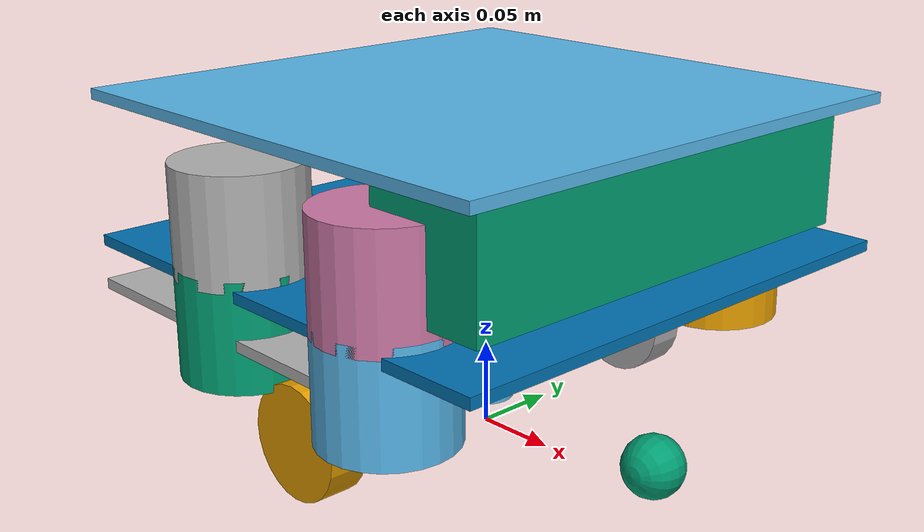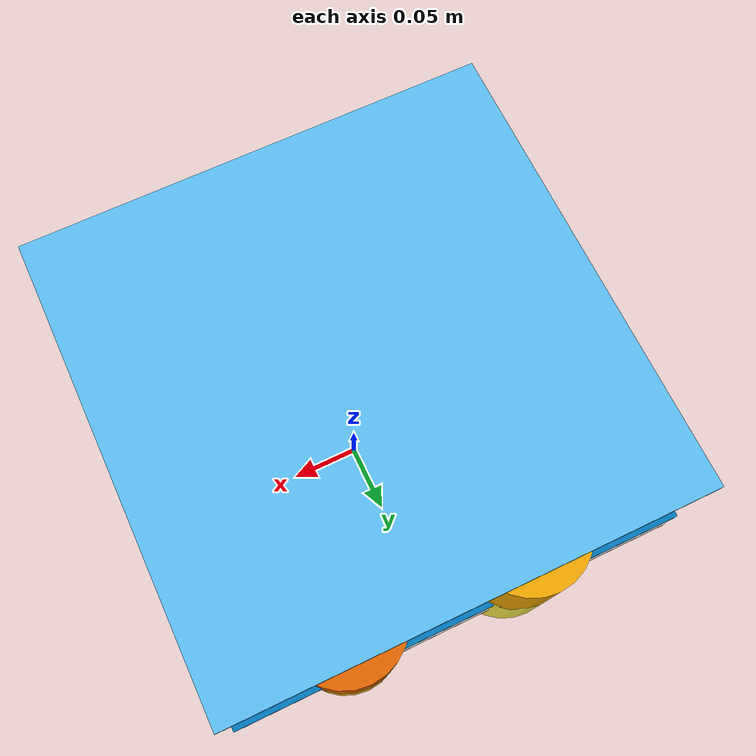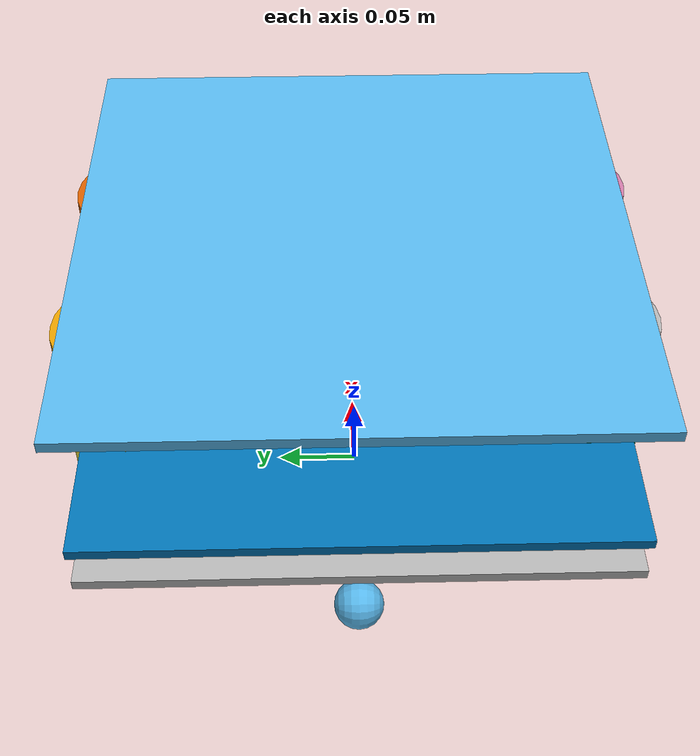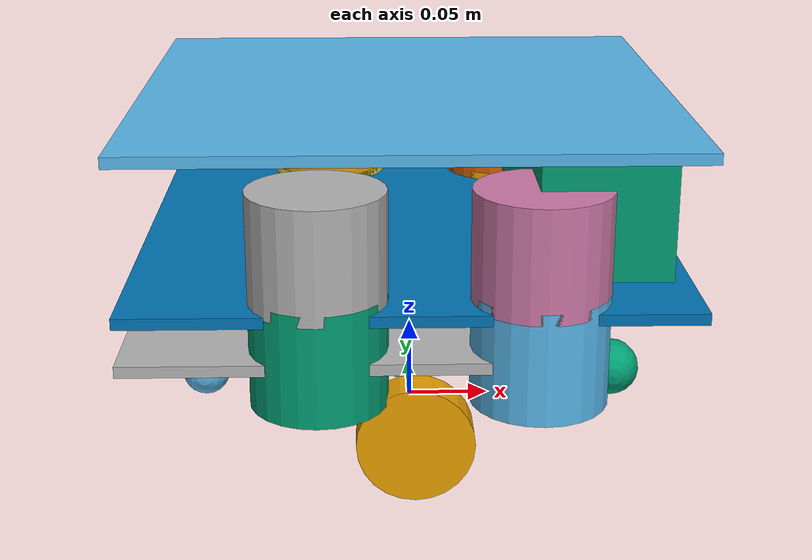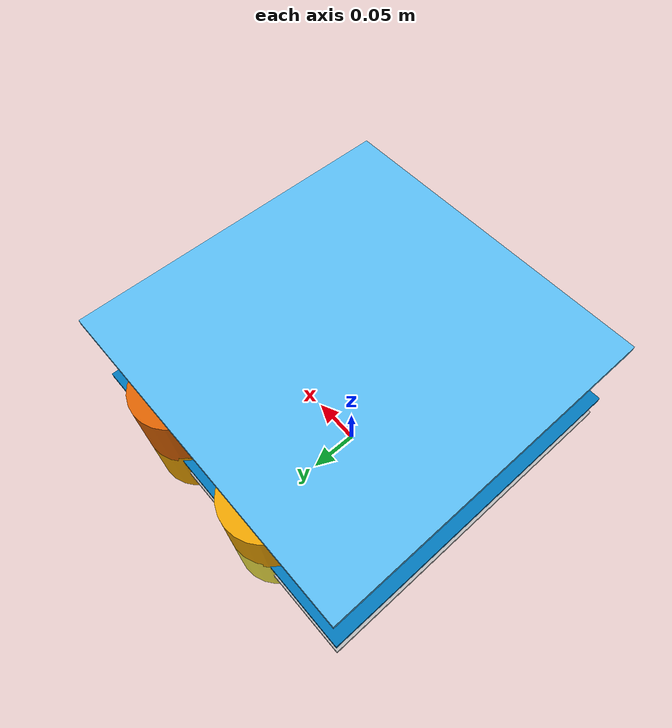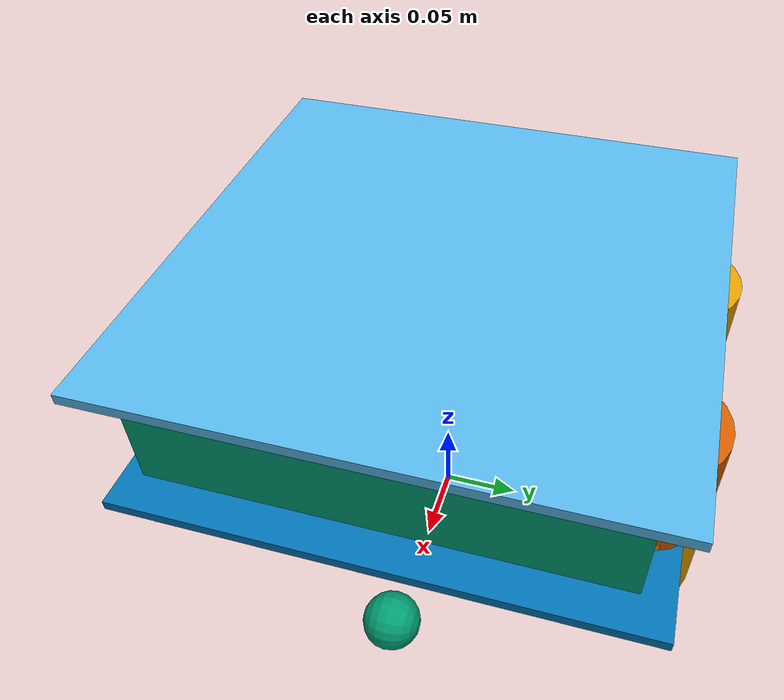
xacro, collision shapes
<?xml version="1.0"?>

<robot name="turtlebot"
    xmlns:sensor="http://playerstage.sourceforge.net/gazebo/xmlschema/#sensor"
    xmlns:controller="http://playerstage.sourceforge.net/gazebo/xmlschema/#controller"
    xmlns:interface="http://playerstage.sourceforge.net/gazebo/xmlschema/#interface">

    <!-- Included URDF Files -->
    <include filename="$(find tortoise_description)/urdf/turtlebot.xacro" />

    <turtlebot />
</robot>

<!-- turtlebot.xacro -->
<robot>
  <include filename="$(find tortoise_description)/urdf/turtlebot_hardware.xacro" />
  <include filename="$(find tortoise_description)/urdf/gazebo.urdf.xacro"/>
  <include filename="$(find tortoise_description)/urdf/turtlebot_calibration.xacro" />

  <material name="Green">
    <color rgba="0.0 0.8 0.0 1.0"/>
  </material>

  <property name="M_PI" value="3.14159"/>
  <property name="SCALE" value="0.0254"/>
  <property name="base_x" value="0.33" />
  <property name="base_y" value="0.33" />

  <macro name="turtlebot">
  <!-- base_footprint is a fictitious link(frame) that is on the ground right below base_link origin, navigation stack depends on this frame -->

  <link name="base_footprint">
    <inertial>
      <mass value="0.0001" />
      <origin xyz="0 0 0" />
      <inertia ixx="0.0001" ixy="0.0" ixz="0.0"
              iyy="0.0001" iyz="0.0"
              izz="0.0001" />
    </inertial>

    <visual>
      <origin xyz="0 0 0" rpy="0 0 0" />
      <geometry>
        <box size="0.001 0.001 0.001" />
      </geometry>
      <material name="Green" />
    </visual>

    <collision>
      <origin xyz="0 0 0.017" rpy="0 0 0" />
      <geometry>
       <box size="0.001 0.001 0.001" />
      </geometry>
    </collision>
  </link>

  <link name="base_link">
    <inertial>
      <mass value="2" />
      <origin xyz="0 0 0.0" />
      <inertia ixx="0.01" ixy="0.0" ixz="0.0"
        iyy="0.01" iyz="0.0" izz="0.5" />
    </inertial>

    <visual>
      <origin xyz=" 0 0 0.0308" rpy="0 0 0" />
      <geometry>
        <mesh filename="package://tortoise_description/meshes/create_body.dae"/>
      </geometry>
    </visual>

    <collision>
      <origin xyz="0.0 0.0 0.0308" rpy="0 0 0" />
      <geometry>
        <cylinder length="0.0611632" radius="0.016495"/>
      </geometry>
    </collision>
  </link>

  <link name="wall_sensor_link">
    <inertial>
      <mass value="0.01" />
      <origin xyz="0 0 0"/>
      <inertia ixx="0.001" ixy="0.0" ixz="0.0"
        iyy="0.001" iyz="0.0" izz="0.001" />
    </inertial>
  </link>

  <link name="left_cliff_sensor_link">
    <inertial>
      <mass value="0.01" />
      <origin xyz="0 0 0"/>
      <inertia ixx="0.001" ixy="0.0" ixz="0.0"
        iyy="0.001" iyz="0.0" izz="0.001" />
    </inertial>
  </link>

  <link name="right_cliff_sensor_link">
    <inertial>
      <mass value="0.01" />
      <origin xyz="0 0 0"/>
      <inertia ixx="0.001" ixy="0.0" ixz="0.0"
        iyy="0.001" iyz="0.0" izz="0.001" />
    </inertial>
  </link>

  <link name="leftfront_cliff_sensor_link">
    <inertial>
      <mass value="0.01" />
      <origin xyz="0 0 0"/>
      <inertia ixx="1.0" ixy="0.0" ixz="0.0"
        iyy="0.01" iyz="0.0" izz="0.01" />
    </inertial>
  </link>

  <link name="rightfront_cliff_sensor_link">
    <inertial>
      <mass value="0.01" />
      <origin xyz="0 0 0"/>
      <inertia ixx="0.001" ixy="0.0" ixz="0.0"
        iyy="0.001" iyz="0.0" izz="0.001" />
    </inertial>
  </link>

  <joint name="base_footprint_joint" type="fixed">
    <origin xyz="0 0 0.017" rpy="0 0 0" />
    <parent link="base_footprint"/>
    <child link="base_link" />
  </joint>

  <joint name="base_wall_sensor_joint" type="fixed">
    <origin xyz="0.09 -0.120 0.042" rpy="0 0 -1.0" />
    <parent link="base_link"/>
    <child link="wall_sensor_link" />
  </joint>

  <joint name="base_left_cliff_sensor_joint" type="fixed">
    <origin xyz="0.07 0.14 0.01" rpy="0 1.57079 0" />
    <parent link="base_link"/>
    <child link="left_cliff_sensor_link" />
  </joint>

  <joint name="base_right_cliff_sensor_joint" type="fixed">
    <origin xyz="0.07 -0.14 0.01" rpy="0 1.57079 0" />
    <parent link="base_link"/>
    <child link="right_cliff_sensor_link" />
  </joint>

  <joint name="base_leftfront_cliff_sensor_joint" type="fixed">
    <origin xyz="0.15 0.04 0.01" rpy="0 1.57079 0" />
    <parent link="base_link"/>
    <child link="leftfront_cliff_sensor_link" />
  </joint>

  <joint name="base_rightfront_cliff_sensor_joint" type="fixed">
    <origin xyz="0.15 -0.04 0.01" rpy="0 1.57079 0" />
    <parent link="base_link"/>
    <child link="rightfront_cliff_sensor_link" />
  </joint>

  <link name="left_wheel_link">
    <inertial>
      <origin xyz="0 0 0"/>
      <mass value="0.01" />
      <inertia ixx="0.001" ixy="0.0" ixz="0.0"
        iyy="0.001" iyz="0.0" izz="0.001" />
    </inertial>

    <visual>
      <origin xyz="0 0 0" rpy="0 1.5707 1.5707" />
      <geometry>
        <cylinder radius="0.033" length = "0.023"/>
      </geometry>
    </visual>

    <collision>
      <origin xyz="0 0 0" rpy="0 1.5707 1.5707" />
      <geometry>
        <cylinder radius="0.033" length = "0.023"/>
      </geometry>
    </collision>
  </link>

  <joint name="left_wheel_joint" type="continuous">
    <origin xyz="0 0.13 0.015" rpy="0 0 0"/>
    <parent link="base_link"/>
    <child link="left_wheel_link"/>
    <axis xyz="0 1 0"/>
  </joint>

  <link name="right_wheel_link">
    <inertial>
      <origin xyz="0 0 0"/>
      <mass value="0.01" />
      <inertia ixx="0.001" ixy="0.0" ixz="0.0"
        iyy="0.001" iyz="0.0" izz="0.001" />
    </inertial>

    <visual>
      <origin xyz="0 0 0" rpy="0 1.5707 1.5707" />
      <geometry>
        <cylinder radius="0.033" length = "0.023"/>
      </geometry>
    </visual>

    <collision>
      <origin xyz="0 0 0" rpy="0 1.5707 1.5707" />
      <geometry>
        <cylinder radius="0.033" length = "0.023"/>
      </geometry>
    </collision>
  </link>

  <joint name="right_wheel_joint" type="continuous">
    <origin xyz="0 -0.13 0.015" rpy="0 0 0"/>
    <parent link="base_link"/>
    <child link="right_wheel_link"/>
    <axis xyz="0 1 0"/>
  </joint>

  <link name="rear_wheel_link">
    <inertial>
      <origin xyz="0 0 0"/>
      <mass value="0.001" />
      <inertia ixx="0.0001" ixy="0.0" ixz="0.0"
        iyy="0.0001" iyz="0.0" izz="0.0001" />
    </inertial>

    <visual>
      <origin xyz="0 0 0" rpy="0 1.5707 1.5707"/>
      <geometry>
        <sphere radius="0.015" />
      </geometry>
    </visual>

    <collision>
      <origin xyz="0 0 0" rpy="0 1.5707 1.5707" />
      <geometry>
        <sphere radius="0.015" />
      </geometry>
    </collision>
  </link>
  <!-- fixed because there's no transmission -->
  <joint name="rear_castor_joint" type="fixed">
    <origin xyz="-0.13 0 0.0" rpy="0 0 0"/>
    <parent link="base_link"/>
    <child link="rear_wheel_link"/>
    <axis xyz="0 1 0"/>
  </joint>

  <link name="front_wheel_link">
    <inertial>
      <origin xyz="0 0 0" />
      <mass value="0.01" />
      <inertia ixx="0.001" ixy="0.0" ixz="0.0"
        iyy="0.001" iyz="0.0" izz="0.001" />
    </inertial>

    <visual>
      <origin xyz="0 0 0" rpy="0 1.5707 1.5707"/>
      <geometry>
        <sphere radius="0.018" />
      </geometry>
    </visual>

    <collision>
      <origin xyz="0 0 0" rpy="0 1.5707 1.5707" />
      <geometry>
        <sphere radius="0.018" />
      </geometry>
    </collision>
  </link>

  <!-- fixed because there's no transmission -->
  <joint name="front_castor_joint" type="fixed">
    <origin xyz="0.13 0 0.0" rpy="0 0 0"/>
    <parent link="base_link"/>
    <child link="front_wheel_link"/>
    <axis xyz="0 1 0"/>
  </joint>

  <turtlebot_spacer parent="base_link" number="0" x_loc="-0.00254" y_loc="0.1114679" z_loc="0.062992"/>
  <turtlebot_spacer parent="base_link" number="1" x_loc="-0.00254" y_loc="-0.1114679" z_loc="0.062992"/>
  <turtlebot_spacer parent="base_link" number="2" x_loc="-0.07239" y_loc="-0.1114679" z_loc="0.062992"/>
  <turtlebot_spacer parent="base_link" number="3" x_loc="-0.07239" y_loc="0.1114679" z_loc="0.062992"/>

  <joint name="plate_0_joint" type="fixed">
    <origin xyz="-0.04334 0  0.06775704" rpy="0 0 0" />
    <parent link="base_link"/>
    <child link="plate_0_link" />
  </joint>

  <link name="plate_0_link">
    <inertial>
      <mass value="0.01" />
      <origin xyz="0 0 0" />
      <inertia ixx="0.01" ixy="0.0" ixz="0.0"
        iyy="0.01" iyz="0.0"
        izz="0.01" />
    </inertial>

    <visual>
      <origin xyz=" 0 0 0 " rpy="0 0 0" />
      <geometry>
        <mesh filename="package://tortoise_description/meshes/plate_0_logo.dae"/>
      </geometry>
    </visual>

    <collision>
      <origin xyz="0.0 0.0 0.0" rpy="0 0 0" />
      <geometry>
        <box size="0.233502 0.314845 0.006401"/>
      </geometry>
    </collision>
  </link>

  <turtlebot_standoff_2in parent="base_link" number="0" x_loc="0.0676402" y_loc="0.1314196" z_loc="0.0709803"/>
  <turtlebot_standoff_2in parent="base_link" number="1" x_loc="0.0676402" y_loc="-0.1314196" z_loc="0.0709803"/>
  <turtlebot_standoff_2in parent="base_link" number="2" x_loc="-0.052832" y_loc="-0.1314196" z_loc="0.0709803"/>
  <turtlebot_standoff_2in parent="base_link" number="3" x_loc="-0.052832" y_loc="0.1314196" z_loc="0.0709803"/>

  <joint name="plate_1_joint" type="fixed">
    <origin xyz="0.04068 0 0.02715" rpy="0 0 0" />
    <parent link="plate_0_link"/>
    <child link="plate_1_link" />
  </joint>

  <link name="plate_1_link">
    <inertial>
      <mass value="0.1" />
      <origin xyz="0 0 0" />
      <inertia ixx="0.01" ixy="0.0" ixz="0.0"
        iyy="0.01" iyz="0.0"
        izz="0.01" />
    </inertial>

    <visual>
      <origin xyz=" 0 0 0 " rpy="0 0 0" />
      <geometry>
        <mesh filename="package://tortoise_description/meshes/plate_1_logo.dae"/>
      </geometry>
    </visual>

    <collision>
      <origin xyz="0.0 0.0 0.0" rpy="0 0 0" />
      <geometry>
        <box size="0.314856 0.314856 0.006401"/>
      </geometry>
    </collision>
  </link>

  <turtlebot_standoff_2in parent="standoff_2in_0_link" number="4" x_loc="0" y_loc="0" z_loc="0.05715"/>
  <turtlebot_standoff_2in parent="standoff_2in_1_link" number="5" x_loc="0" y_loc="0" z_loc="0.05715"/>
  <turtlebot_standoff_2in parent="standoff_2in_2_link" number="6" x_loc="0" y_loc="0" z_loc="0.05715"/>
  <turtlebot_standoff_2in parent="standoff_2in_3_link" number="7" x_loc="0" y_loc="0" z_loc="0.05715"/>

  <joint name="plate_2_joint" type="fixed">
    <origin xyz="0 0 0.0872008" rpy="0 0 0" />
    <parent link="plate_1_link"/>
    <child link="plate_2_link" />
  </joint>

  <link name="plate_2_link">
    <inertial>
      <mass value="0.01" />
      <origin xyz="0 0 0" />
      <inertia ixx="0.001" ixy="0.0" ixz="0.0"
        iyy="0.001" iyz="0.0"
        izz="0.001" />
    </inertial>

    <visual>
      <origin xyz=" 0 0 0 " rpy="0 0 0" />
      <geometry>
        <mesh filename="package://tortoise_description/meshes/plate_1_logo.dae"/>
      </geometry>
    </visual>

    <collision>
      <origin xyz="0.0 0.0 0.0" rpy="0 0 0" />
      <geometry>
        <box size="0.314856 0.314856 0.006401"/>
      </geometry>
    </collision>
  </link>

  <joint name="base_kinect_joint" type="fixed">
    <origin xyz="${turtlebot_calib_cam_x} ${turtlebot_calib_cam_y} ${turtlebot_calib_cam_z}"
            rpy="${turtlebot_calib_cam_rr} ${turtlebot_calib_cam_rp} ${turtlebot_calib_cam_ry}" />
    <parent link="${turtlebot_kinect_frame_name}" />
    <child link="kinect_link" />
  </joint>

  <link name="kinect_link">
    <inertial>
      <mass value="0.01" />
      <origin xyz="0 0 0" />
      <inertia ixx="0.001" ixy="0.0" ixz="0.0"
        iyy="0.001" iyz="0.0"
        izz="0.001" />
    </inertial>

    <visual>
      <origin xyz=" 0 0 0 " rpy="0 0 0" />
      <geometry>
        <mesh filename="package://tortoise_description/meshes/kinect.dae"/>
      </geometry>
    </visual>

    <collision>
      <origin xyz="0.0 0.0 0.0" rpy="0 0 0" />
      <geometry>
        <box size="0.0730 .2760 0.0720"/>
      </geometry>
    </collision>

  </link>

  <joint name="kinect_depth_joint" type="fixed">
    <origin xyz="0 0.018 0" rpy="0 0 0" />
    <parent link="kinect_link" />
    <child link="kinect_depth_frame" />
  </joint>

  <link name="kinect_depth_frame">
    <inertial>
      <mass value="0.01" />
      <origin xyz="0 0 0" />
      <inertia ixx="0.001" ixy="0.0" ixz="0.0"
        iyy="0.001" iyz="0.0"
        izz="0.001" />
    </inertial>
  </link>

  <joint name="kinect_depth_optical_joint" type="fixed">
    <origin xyz="0 0 0" rpy="${-M_PI/2} 0 ${-M_PI/2}" />
    <parent link="kinect_depth_frame" />
    <child link="kinect_depth_optical_frame" />
  </joint>

  <link name="kinect_depth_optical_frame">
    <inertial>
      <mass value="0.001" />
      <origin xyz="0 0 0" />
      <inertia ixx="0.0001" ixy="0.0" ixz="0.0"
        iyy="0.0001" iyz="0.0"
        izz="0.0001" />
    </inertial>
  </link>

  <joint name="kinect_rgb_joint" type="fixed">
    <origin xyz="0 -0.005 0" rpy="0 0 0" />
    <parent link="kinect_link" />
    <child link="kinect_rgb_frame" />
  </joint>

  <link name="kinect_rgb_frame">
    <inertial>
      <mass value="0.001" />
      <origin xyz="0 0 0" />
      <inertia ixx="0.0001" ixy="0.0" ixz="0.0"
        iyy="0.0001" iyz="0.0"
        izz="0.0001" />
    </inertial>
  </link>

  <joint name="kinect_rgb_optical_joint" type="fixed">
    <origin xyz="0 0 0" rpy="${-M_PI/2} 0 ${-M_PI/2}" />
    <parent link="kinect_rgb_frame" />
    <child link="kinect_rgb_optical_frame" />
  </joint>

  <link name="kinect_rgb_optical_frame">
    <inertial>
      <mass value="0.001" />
      <origin xyz="0 0 0" />
      <inertia ixx="0.0001" ixy="0.0" ixz="0.0"
        iyy="0.0001" iyz="0.0"
        izz="0.0001" />
    </inertial>
  </link>

  </macro>
</robot>

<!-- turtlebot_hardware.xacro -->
<robot>
  <property name="M_PI" value="3.14159"/>
  <property name="M_SCALE" value="0.001"/>

  <macro name="turtlebot_spacer" params="parent number x_loc y_loc z_loc">
    <joint name="spacer_${number}_joint" type="fixed">
      <origin xyz="${x_loc} ${y_loc} ${z_loc}" rpy="0 0 0" />
      <parent link="${parent}"/>
      <child link="spacer_${number}_link" />
    </joint>

    <link name="spacer_${number}_link">
      <inertial>
        <mass value="0.001" />
        <origin xyz="0 0 0" />
        <inertia ixx="0.0001" ixy="0.0" ixz="0.0"
          iyy="0.0001" iyz="0.0"
          izz="0.0001" />
      </inertial>

      <visual>
        <origin xyz=" 0 0 0 " rpy="0 0 0" />
        <geometry>
          <mesh filename="package://tortoise_description/meshes/68-02403-125_Spacer.dae" scale="${M_SCALE} ${M_SCALE} ${M_SCALE}"/>
        </geometry>
      </visual>

      <collision>
        <origin xyz="0.0 0.0 0.0" rpy="0 0 0" />
        <geometry>
          <cylinder length="0.003175" radius=".0127"/>
        </geometry>
      </collision>
    </link>
  </macro>

  <macro name="turtlebot_standoff_1in" params="parent number x_loc y_loc z_loc">
    <joint name="standoff_1in_${number}_joint" type="fixed">
      <origin xyz="${x_loc} ${y_loc} ${z_loc}" rpy="0 0 0" />
      <parent link="${parent}"/>
      <child link="standoff_1in_${number}_link" />
    </joint>

    <link name="standoff_1in_${number}_link">
      <inertial>
        <mass value="0.001" />
        <origin xyz="0 0 0" />
        <inertia ixx="0.0001" ixy="0.0" ixz="0.0"
          iyy="0.0001" iyz="0.0"
          izz="0.0001" />
      </inertial>

      <visual>
        <origin xyz=" 0 0 0 " rpy="0 0 0" />
        <geometry>
          <mesh filename="package://tortoise_description/meshes/68-04552-1000-RA_Turtlebot_M-F_Standoff.dae" scale="${M_SCALE} ${M_SCALE} ${M_SCALE}"/>
        </geometry>
      </visual>

      <collision>
        <origin xyz="0.0 0.0 0.0" rpy="0 0 0" />
        <geometry>
          <cylinder length="0.0381" radius="0.011113"/>
        </geometry>
      </collision>
    </link>
  </macro>

  <macro name="turtlebot_standoff_2in" params="parent number x_loc y_loc z_loc">
    <joint name="standoff_2in_${number}_joint" type="fixed">
      <origin xyz="${x_loc} ${y_loc} ${z_loc}" rpy="0 0 0" />
      <parent link="${parent}"/>
      <child link="standoff_2in_${number}_link" />
    </joint>

    <link name="standoff_2in_${number}_link">
      <inertial>
        <mass value="0.001" />
        <origin xyz="0 0 0" />
        <inertia ixx="0.0001" ixy="0.0" ixz="0.0"
          iyy="0.0001" iyz="0.0"
          izz="0.0001" />
      </inertial>

      <visual>
        <origin xyz=" 0 0 0 " rpy="0 0 0" />
        <geometry>
          <mesh filename="package://tortoise_description/meshes/68-04552-2000-RA_Turtlebot_M-F_Standoff.dae" scale="${M_SCALE} ${M_SCALE} ${M_SCALE}"/>
        </geometry>
      </visual>

      <collision>
        <origin xyz="0.0 0.0 0.0" rpy="0 0 0" />
        <geometry>
          <cylinder length="0.0635" radius="0.0381"/>
        </geometry>
      </collision>
    </link>
  </macro>

  <macro name="turtlebot_standoff_8in" params="parent number x_loc y_loc z_loc">
    <joint name="standoff_8in_${number}_joint" type="fixed">
      <origin xyz="${x_loc} ${y_loc} ${z_loc}" rpy="0 0 0" />
      <parent link="${parent}"/>
      <child link="standoff_8in_${number}_link" />
    </joint>

    <link name="standoff_8in_${number}_link">
      <inertial>
        <mass value="0.001" />
        <origin xyz="0 0 0" />
        <inertia ixx="0.0001" ixy="0.0" ixz="0.0"
          iyy="0.0001" iyz="0.0"
          izz="0.0001" />
      </inertial>

      <visual>
        <origin xyz=" 0 0 0 " rpy="0 0 0" />
        <geometry>
          <mesh filename="package://tortoise_description/meshes/68-02421-8000-RA_Turtlebot_F-F_Standoff.dae" scale="${M_SCALE} ${M_SCALE} ${M_SCALE}"/>
        </geometry>
      </visual>

      <collision>
        <origin xyz="0.0 0.0 0.0" rpy="0 0 0" />
        <geometry>
          <cylinder length="0.2032" radius="0.011113"/>
        </geometry>
      </collision>
    </link>
  </macro>

  <macro name="turtlebot_standoff_kinect" params="parent number x_loc y_loc z_loc">
    <joint name="standoff_kinect_${number}_joint" type="fixed">
      <origin xyz="${x_loc} ${y_loc} ${z_loc}" rpy="0 0 0" />
      <parent link="${parent}"/>
      <child link="standoff_kinect_${number}_link" />
    </joint>

    <link name="standoff_kinect_${number}_link">
      <inertial>
        <mass value="0.001" />
        <origin xyz="0 0 0" />
        <inertia ixx="0.0001" ixy="0.0" ixz="0.0"
          iyy="0.0001" iyz="0.0"
          izz="0.0001" />
      </inertial>

      <visual>
        <origin xyz=" 0 0 0 " rpy="0 0 0" />
        <geometry>
          <mesh filename="package://tortoise_description/meshes/68-04556-RA_Kinect_Standoff_Assy.3ds" scale="${M_SCALE} ${M_SCALE} ${M_SCALE}"/>
        </geometry>
      </visual>

      <collision>
        <origin xyz="0.0 0.0 0.0" rpy="0 0 0" />
        <geometry>
          <cylinder length="0.008585" radius="0.001111"/>
        </geometry>
      </collision>
    </link>
  </macro>

</robot>

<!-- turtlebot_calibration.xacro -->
<robot>

  <property name="turtlebot_calib_cam_x" value="0.1044382" />
  <property name="turtlebot_calib_cam_y" value="0" />
  <property name="turtlebot_calib_cam_z" value="0.05" />
  <property name="turtlebot_calib_cam_rr" value="0" />
  <property name="turtlebot_calib_cam_rp" value="0" />
  <property name="turtlebot_calib_cam_ry" value="0" />
  <property name="turtlebot_kinect_frame_name" value="plate_1_link" />

</robot>
